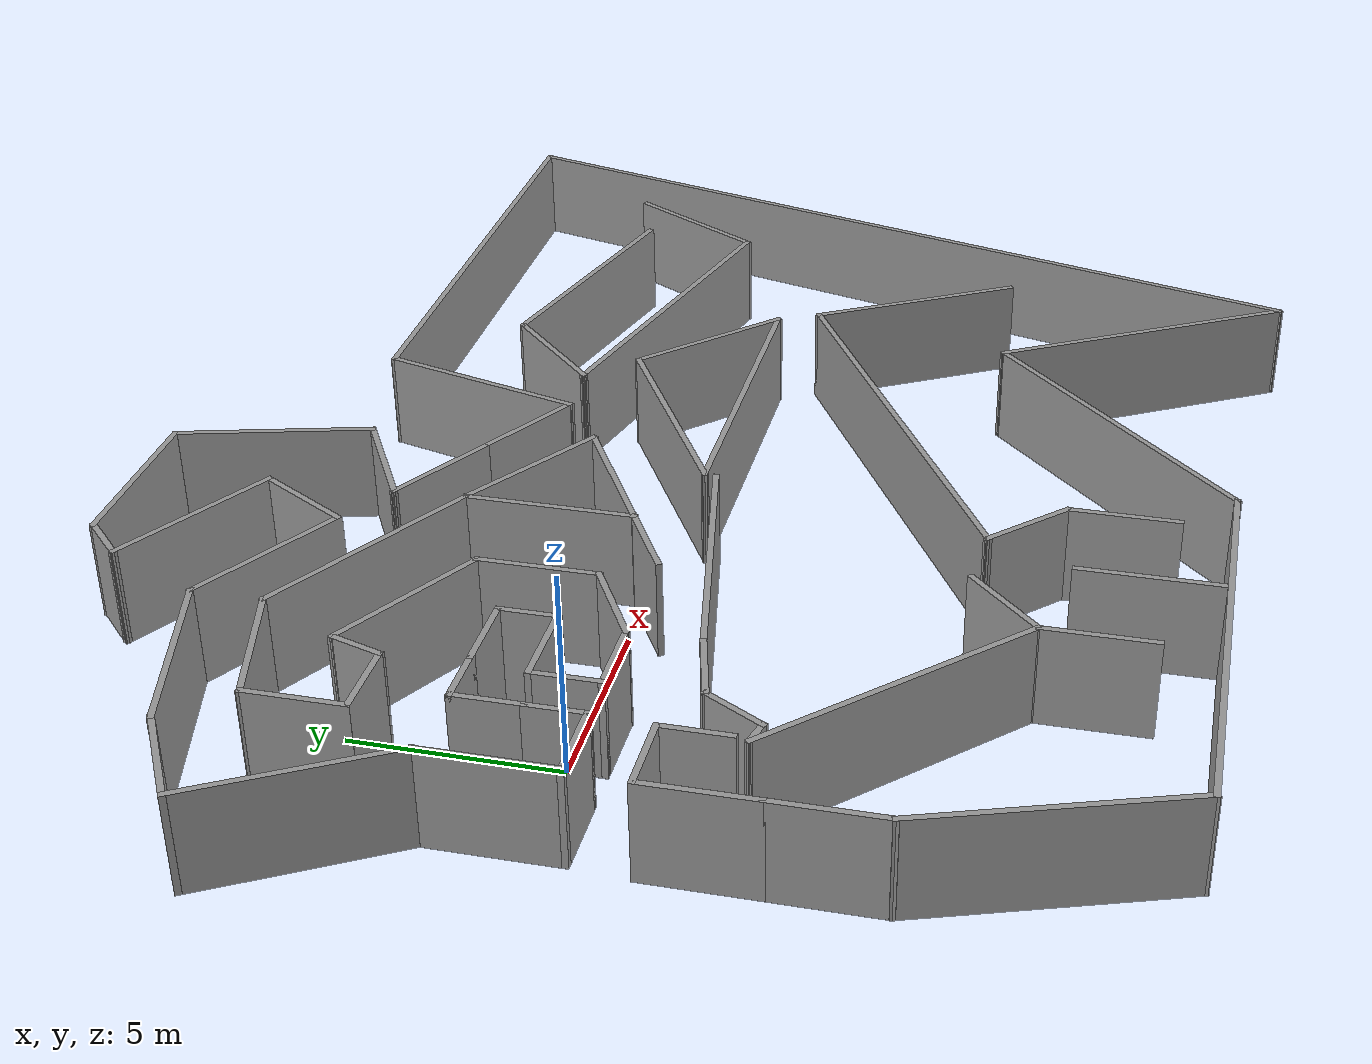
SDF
<?xml version='1.0'?>
<sdf version='1.7'>
  <model name='test_map'>
    <pose>10.5734 -0.967248 0 0 -0 0</pose>
    <link name='Wall_0'>
      <collision name='Wall_0_Collision'>
        <geometry>
          <box>
            <size>3.25 0.15 2.5</size>
          </box>
        </geometry>
        <pose>0 0 1.25 0 -0 0</pose>
      </collision>
      <visual name='Wall_0_Visual'>
        <pose>0 0 1.25 0 -0 0</pose>
        <geometry>
          <box>
            <size>3.25 0.15 2.5</size>
          </box>
        </geometry>
        <material>
          <script>
            <uri>file://media/materials/scripts/gazebo.material</uri>
            <name>Gazebo/Grey</name>
          </script>
          <ambient>1 1 1 1</ambient>
        </material>
        <meta>
          <layer>0</layer>
        </meta>
      </visual>
      <pose>-13.482 1.66184 0 0 -0 1.5708</pose>
    </link>
    <link name='Wall_12'>
      <collision name='Wall_12_Collision'>
        <geometry>
          <box>
            <size>2 0.15 2.5</size>
          </box>
        </geometry>
        <pose>0 0 1.25 0 -0 0</pose>
      </collision>
      <visual name='Wall_12_Visual'>
        <pose>0 0 1.25 0 -0 0</pose>
        <geometry>
          <box>
            <size>2 0.15 2.5</size>
          </box>
        </geometry>
        <material>
          <script>
            <uri>file://media/materials/scripts/gazebo.material</uri>
            <name>Gazebo/Grey</name>
          </script>
          <ambient>1 1 1 1</ambient>
        </material>
        <meta>
          <layer>0</layer>
        </meta>
      </visual>
      <pose>-12.557 0.111844 0 0 -0 0</pose>
    </link>
    <link name='Wall_13'>
      <collision name='Wall_13_Collision'>
        <geometry>
          <box>
            <size>1.5 0.15 2.5</size>
          </box>
        </geometry>
        <pose>0 0 1.25 0 -0 0</pose>
      </collision>
      <visual name='Wall_13_Visual'>
        <pose>0 0 1.25 0 -0 0</pose>
        <geometry>
          <box>
            <size>1.5 0.15 2.5</size>
          </box>
        </geometry>
        <material>
          <script>
            <uri>file://media/materials/scripts/gazebo.material</uri>
            <name>Gazebo/Grey</name>
          </script>
          <ambient>1 1 1 1</ambient>
        </material>
        <meta>
          <layer>0</layer>
        </meta>
      </visual>
      <pose>-11.632 0.786844 0 0 -0 1.5708</pose>
    </link>
    <link name='Wall_14'>
      <collision name='Wall_14_Collision'>
        <geometry>
          <box>
            <size>1.75 0.15 2.5</size>
          </box>
        </geometry>
        <pose>0 0 1.25 0 -0 0</pose>
      </collision>
      <visual name='Wall_14_Visual'>
        <pose>0 0 1.25 0 -0 0</pose>
        <geometry>
          <box>
            <size>1.75 0.15 2.5</size>
          </box>
        </geometry>
        <material>
          <script>
            <uri>file://media/materials/scripts/gazebo.material</uri>
            <name>Gazebo/Grey</name>
          </script>
          <ambient>1 1 1 1</ambient>
        </material>
        <meta>
          <layer>0</layer>
        </meta>
      </visual>
      <pose>-11.632 2.26184 0 0 -0 1.5708</pose>
    </link>
    <link name='Wall_15'>
      <collision name='Wall_15_Collision'>
        <geometry>
          <box>
            <size>1.5 0.15 2.5</size>
          </box>
        </geometry>
        <pose>0 0 1.25 0 -0 0</pose>
      </collision>
      <visual name='Wall_15_Visual'>
        <pose>0 0 1.25 0 -0 0</pose>
        <geometry>
          <box>
            <size>1.5 0.15 2.5</size>
          </box>
        </geometry>
        <material>
          <script>
            <uri>file://media/materials/scripts/gazebo.material</uri>
            <name>Gazebo/Grey</name>
          </script>
          <ambient>1 1 1 1</ambient>
        </material>
        <meta>
          <layer>0</layer>
        </meta>
      </visual>
      <pose>-10.957 3.06184 0 0 -0 0</pose>
    </link>
    <link name='Wall_16'>
      <collision name='Wall_16_Collision'>
        <geometry>
          <box>
            <size>2 0.15 2.5</size>
          </box>
        </geometry>
        <pose>0 0 1.25 0 -0 0</pose>
      </collision>
      <visual name='Wall_16_Visual'>
        <pose>0 0 1.25 0 -0 0</pose>
        <geometry>
          <box>
            <size>2 0.15 2.5</size>
          </box>
        </geometry>
        <material>
          <script>
            <uri>file://media/materials/scripts/gazebo.material</uri>
            <name>Gazebo/Grey</name>
          </script>
          <ambient>1 1 1 1</ambient>
        </material>
        <meta>
          <layer>0</layer>
        </meta>
      </visual>
      <pose>-9.35702 3.06184 0 0 -0 0</pose>
    </link>
    <link name='Wall_17'>
      <collision name='Wall_17_Collision'>
        <geometry>
          <box>
            <size>1.5 0.15 2.5</size>
          </box>
        </geometry>
        <pose>0 0 1.25 0 -0 0</pose>
      </collision>
      <visual name='Wall_17_Visual'>
        <pose>0 0 1.25 0 -0 0</pose>
        <geometry>
          <box>
            <size>1.5 0.15 2.5</size>
          </box>
        </geometry>
        <material>
          <script>
            <uri>file://media/materials/scripts/gazebo.material</uri>
            <name>Gazebo/Grey</name>
          </script>
          <ambient>1 1 1 1</ambient>
        </material>
        <meta>
          <layer>0</layer>
        </meta>
      </visual>
      <pose>-8.43202 2.38684 0 0 -0 -1.5708</pose>
    </link>
    <link name='Wall_18'>
      <collision name='Wall_18_Collision'>
        <geometry>
          <box>
            <size>2.25 0.15 2.5</size>
          </box>
        </geometry>
        <pose>0 0 1.25 0 -0 0</pose>
      </collision>
      <visual name='Wall_18_Visual'>
        <pose>0 0 1.25 0 -0 0</pose>
        <geometry>
          <box>
            <size>2.25 0.15 2.5</size>
          </box>
        </geometry>
        <material>
          <script>
            <uri>file://media/materials/scripts/gazebo.material</uri>
            <name>Gazebo/Grey</name>
          </script>
          <ambient>1 1 1 1</ambient>
        </material>
        <meta>
          <layer>0</layer>
        </meta>
      </visual>
      <pose>-9.48202 1.71184 0 0 -0 3.14159</pose>
    </link>
    <link name='Wall_19'>
      <collision name='Wall_19_Collision'>
        <geometry>
          <box>
            <size>1.75 0.15 2.5</size>
          </box>
        </geometry>
        <pose>0 0 1.25 0 -0 0</pose>
      </collision>
      <visual name='Wall_19_Visual'>
        <pose>0 0 1.25 0 -0 0</pose>
        <geometry>
          <box>
            <size>1.75 0.15 2.5</size>
          </box>
        </geometry>
        <material>
          <script>
            <uri>file://media/materials/scripts/gazebo.material</uri>
            <name>Gazebo/Grey</name>
          </script>
          <ambient>1 1 1 1</ambient>
        </material>
        <meta>
          <layer>0</layer>
        </meta>
      </visual>
      <pose>-10.532 0.911844 0 0 -0 -1.5708</pose>
    </link>
    <link name='Wall_20'>
      <collision name='Wall_20_Collision'>
        <geometry>
          <box>
            <size>2 0.15 2.5</size>
          </box>
        </geometry>
        <pose>0 0 1.25 0 -0 0</pose>
      </collision>
      <visual name='Wall_20_Visual'>
        <pose>0 0 1.25 0 -0 0</pose>
        <geometry>
          <box>
            <size>2 0.15 2.5</size>
          </box>
        </geometry>
        <material>
          <script>
            <uri>file://media/materials/scripts/gazebo.material</uri>
            <name>Gazebo/Grey</name>
          </script>
          <ambient>1 1 1 1</ambient>
        </material>
        <meta>
          <layer>0</layer>
        </meta>
      </visual>
      <pose>-9.60702 0.111844 0 0 -0 0</pose>
    </link>
    <link name='Wall_21'>
      <collision name='Wall_21_Collision'>
        <geometry>
          <box>
            <size>2.5 0.15 2.5</size>
          </box>
        </geometry>
        <pose>0 0 1.25 0 -0 0</pose>
      </collision>
      <visual name='Wall_21_Visual'>
        <pose>0 0 1.25 0 -0 0</pose>
        <geometry>
          <box>
            <size>2.5 0.15 2.5</size>
          </box>
        </geometry>
        <material>
          <script>
            <uri>file://media/materials/scripts/gazebo.material</uri>
            <name>Gazebo/Grey</name>
          </script>
          <ambient>1 1 1 1</ambient>
        </material>
        <meta>
          <layer>0</layer>
        </meta>
      </visual>
      <pose>-7.66444 0.699344 0 0 -0 0.523599</pose>
    </link>
    <link name='Wall_22'>
      <collision name='Wall_22_Collision'>
        <geometry>
          <box>
            <size>3 0.15 2.5</size>
          </box>
        </geometry>
        <pose>0 0 1.25 0 -0 0</pose>
      </collision>
      <visual name='Wall_22_Visual'>
        <pose>0 0 1.25 0 -0 0</pose>
        <geometry>
          <box>
            <size>3 0.15 2.5</size>
          </box>
        </geometry>
        <material>
          <script>
            <uri>file://media/materials/scripts/gazebo.material</uri>
            <name>Gazebo/Grey</name>
          </script>
          <ambient>1 1 1 1</ambient>
        </material>
        <meta>
          <layer>0</layer>
        </meta>
      </visual>
      <pose>-6.64686 2.71184 0 0 -0 1.5708</pose>
    </link>
    <link name='Wall_23'>
      <collision name='Wall_23_Collision'>
        <geometry>
          <box>
            <size>4.25 0.15 2.5</size>
          </box>
        </geometry>
        <pose>0 0 1.25 0 -0 0</pose>
      </collision>
      <visual name='Wall_23_Visual'>
        <pose>0 0 1.25 0 -0 0</pose>
        <geometry>
          <box>
            <size>4.25 0.15 2.5</size>
          </box>
        </geometry>
        <material>
          <script>
            <uri>file://media/materials/scripts/gazebo.material</uri>
            <name>Gazebo/Grey</name>
          </script>
          <ambient>1 1 1 1</ambient>
        </material>
        <meta>
          <layer>0</layer>
        </meta>
      </visual>
      <pose>-8.42221 5.16184 0 0 -0 2.61799</pose>
    </link>
    <link name='Wall_26'>
      <collision name='Wall_26_Collision'>
        <geometry>
          <box>
            <size>2.25 0.15 2.5</size>
          </box>
        </geometry>
        <pose>0 0 1.25 0 -0 0</pose>
      </collision>
      <visual name='Wall_26_Visual'>
        <pose>0 0 1.25 0 -0 0</pose>
        <geometry>
          <box>
            <size>2.25 0.15 2.5</size>
          </box>
        </geometry>
        <material>
          <script>
            <uri>file://media/materials/scripts/gazebo.material</uri>
            <name>Gazebo/Grey</name>
          </script>
          <ambient>1 1 1 1</ambient>
        </material>
        <meta>
          <layer>0</layer>
        </meta>
      </visual>
      <pose>-5.03228 0.643757 0 0 -0 0.523599</pose>
    </link>
    <link name='Wall_27'>
      <collision name='Wall_27_Collision'>
        <geometry>
          <box>
            <size>4.25 0.15 2.5</size>
          </box>
        </geometry>
        <pose>0 0 1.25 0 -0 0</pose>
      </collision>
      <visual name='Wall_27_Visual'>
        <pose>0 0 1.25 0 -0 0</pose>
        <geometry>
          <box>
            <size>4.25 0.15 2.5</size>
          </box>
        </geometry>
        <material>
          <script>
            <uri>file://media/materials/scripts/gazebo.material</uri>
            <name>Gazebo/Grey</name>
          </script>
          <ambient>1 1 1 1</ambient>
        </material>
        <meta>
          <layer>0</layer>
        </meta>
      </visual>
      <pose>-4.12295 3.21876 0 0 -0 1.5708</pose>
    </link>
    <link name='Wall_28'>
      <collision name='Wall_28_Collision'>
        <geometry>
          <box>
            <size>6 0.15 2.5</size>
          </box>
        </geometry>
        <pose>0 0 1.25 0 -0 0</pose>
      </collision>
      <visual name='Wall_28_Visual'>
        <pose>0 0 1.25 0 -0 0</pose>
        <geometry>
          <box>
            <size>6 0.15 2.5</size>
          </box>
        </geometry>
        <material>
          <script>
            <uri>file://media/materials/scripts/gazebo.material</uri>
            <name>Gazebo/Grey</name>
          </script>
          <ambient>1 1 1 1</ambient>
        </material>
        <meta>
          <layer>0</layer>
        </meta>
      </visual>
      <pose>-6.65608 6.73126 0 0 -0 2.61799</pose>
    </link>
    <link name='Wall_29'>
      <collision name='Wall_29_Collision'>
        <geometry>
          <box>
            <size>3.5 0.15 2.5</size>
          </box>
        </geometry>
        <pose>0 0 1.25 0 -0 0</pose>
      </collision>
      <visual name='Wall_29_Visual'>
        <pose>0 0 1.25 0 -0 0</pose>
        <geometry>
          <box>
            <size>3.5 0.15 2.5</size>
          </box>
        </geometry>
        <material>
          <script>
            <uri>file://media/materials/scripts/gazebo.material</uri>
            <name>Gazebo/Grey</name>
          </script>
          <ambient>1 1 1 1</ambient>
        </material>
        <meta>
          <layer>0</layer>
        </meta>
      </visual>
      <pose>-10.8071 7.76023 0 0 -0 -2.87979</pose>
    </link>
    <link name='Wall_30'>
      <collision name='Wall_30_Collision'>
        <geometry>
          <box>
            <size>2.5 0.15 2.5</size>
          </box>
        </geometry>
        <pose>0 0 1.25 0 -0 0</pose>
      </collision>
      <visual name='Wall_30_Visual'>
        <pose>0 0 1.25 0 -0 0</pose>
        <geometry>
          <box>
            <size>2.5 0.15 2.5</size>
          </box>
        </geometry>
        <material>
          <script>
            <uri>file://media/materials/scripts/gazebo.material</uri>
            <name>Gazebo/Grey</name>
          </script>
          <ambient>1 1 1 1</ambient>
        </material>
        <meta>
          <layer>0</layer>
        </meta>
      </visual>
      <pose>-12.4251 6.15171 0 0 -0 -1.5708</pose>
    </link>
    <link name='Wall_31'>
      <collision name='Wall_31_Collision'>
        <geometry>
          <box>
            <size>2 0.15 2.5</size>
          </box>
        </geometry>
        <pose>0 0 1.25 0 -0 0</pose>
      </collision>
      <visual name='Wall_31_Visual'>
        <pose>0 0 1.25 0 -0 0</pose>
        <geometry>
          <box>
            <size>2 0.15 2.5</size>
          </box>
        </geometry>
        <material>
          <script>
            <uri>file://media/materials/scripts/gazebo.material</uri>
            <name>Gazebo/Grey</name>
          </script>
          <ambient>1 1 1 1</ambient>
        </material>
        <meta>
          <layer>0</layer>
        </meta>
      </visual>
      <pose>-11.5001 4.97671 0 0 -0 0</pose>
    </link>
    <link name='Wall_32'>
      <collision name='Wall_32_Collision'>
        <geometry>
          <box>
            <size>1.41764 0.15 2.5</size>
          </box>
        </geometry>
        <pose>0 0 1.25 0 -0 0</pose>
      </collision>
      <visual name='Wall_32_Visual'>
        <pose>0 0 1.25 0 -0 0</pose>
        <geometry>
          <box>
            <size>1.41764 0.15 2.5</size>
          </box>
        </geometry>
        <material>
          <script>
            <uri>file://media/materials/scripts/gazebo.material</uri>
            <name>Gazebo/Grey</name>
          </script>
          <ambient>1 1 1 1</ambient>
        </material>
        <meta>
          <layer>0</layer>
        </meta>
      </visual>
      <pose>-10.3863 5.58178 0 0 -0 1.26842</pose>
    </link>
    <link name='Wall_34'>
      <collision name='Wall_34_Collision'>
        <geometry>
          <box>
            <size>5 0.15 2.5</size>
          </box>
        </geometry>
        <pose>0 0 1.25 0 -0 0</pose>
      </collision>
      <visual name='Wall_34_Visual'>
        <pose>0 0 1.25 0 -0 0</pose>
        <geometry>
          <box>
            <size>5 0.15 2.5</size>
          </box>
        </geometry>
        <material>
          <script>
            <uri>file://media/materials/scripts/gazebo.material</uri>
            <name>Gazebo/Grey</name>
          </script>
          <ambient>1 1 1 1</ambient>
        </material>
        <meta>
          <layer>0</layer>
        </meta>
      </visual>
      <pose>-14.6945 5.31196 0 0 -0 2.0944</pose>
    </link>
    <link name='Wall_35'>
      <collision name='Wall_35_Collision'>
        <geometry>
          <box>
            <size>2.75 0.15 2.5</size>
          </box>
        </geometry>
        <pose>0 0 1.25 0 -0 0</pose>
      </collision>
      <visual name='Wall_35_Visual'>
        <pose>0 0 1.25 0 -0 0</pose>
        <geometry>
          <box>
            <size>2.75 0.15 2.5</size>
          </box>
        </geometry>
        <material>
          <script>
            <uri>file://media/materials/scripts/gazebo.material</uri>
            <name>Gazebo/Grey</name>
          </script>
          <ambient>1 1 1 1</ambient>
        </material>
        <meta>
          <layer>0</layer>
        </meta>
      </visual>
      <pose>-14.7812 8.06207 0 0 -0 0.523599</pose>
    </link>
    <link name='Wall_36'>
      <collision name='Wall_36_Collision'>
        <geometry>
          <box>
            <size>4.75 0.15 2.5</size>
          </box>
        </geometry>
        <pose>0 0 1.25 0 -0 0</pose>
      </collision>
      <visual name='Wall_36_Visual'>
        <pose>0 0 1.25 0 -0 0</pose>
        <geometry>
          <box>
            <size>4.75 0.15 2.5</size>
          </box>
        </geometry>
        <material>
          <script>
            <uri>file://media/materials/scripts/gazebo.material</uri>
            <name>Gazebo/Grey</name>
          </script>
          <ambient>1 1 1 1</ambient>
        </material>
        <meta>
          <layer>0</layer>
        </meta>
      </visual>
      <pose>-11.4337 9.30735 0 0 -0 0.261799</pose>
    </link>
    <link name='Wall_37'>
      <collision name='Wall_37_Collision'>
        <geometry>
          <box>
            <size>4.25 0.15 2.5</size>
          </box>
        </geometry>
        <pose>0 0 1.25 0 -0 0</pose>
      </collision>
      <visual name='Wall_37_Visual'>
        <pose>0 0 1.25 0 -0 0</pose>
        <geometry>
          <box>
            <size>4.25 0.15 2.5</size>
          </box>
        </geometry>
        <material>
          <script>
            <uri>file://media/materials/scripts/gazebo.material</uri>
            <name>Gazebo/Grey</name>
          </script>
          <ambient>1 1 1 1</ambient>
        </material>
        <meta>
          <layer>0</layer>
        </meta>
      </visual>
      <pose>-7.43674 8.87763 0 0 -0 -0.523599</pose>
    </link>
    <link name='Wall_38'>
      <collision name='Wall_38_Collision'>
        <geometry>
          <box>
            <size>2.75 0.15 2.5</size>
          </box>
        </geometry>
        <pose>0 0 1.25 0 -0 0</pose>
      </collision>
      <visual name='Wall_38_Visual'>
        <pose>0 0 1.25 0 -0 0</pose>
        <geometry>
          <box>
            <size>2.75 0.15 2.5</size>
          </box>
        </geometry>
        <material>
          <script>
            <uri>file://media/materials/scripts/gazebo.material</uri>
            <name>Gazebo/Grey</name>
          </script>
          <ambient>1 1 1 1</ambient>
        </material>
        <meta>
          <layer>0</layer>
        </meta>
      </visual>
      <pose>-5.01139 8.97847 0 0 -0 1.0472</pose>
    </link>
    <link name='Wall_39'>
      <collision name='Wall_39_Collision'>
        <geometry>
          <box>
            <size>4.5 0.15 2.5</size>
          </box>
        </geometry>
        <pose>0 0 1.25 0 -0 0</pose>
      </collision>
      <visual name='Wall_39_Visual'>
        <pose>0 0 1.25 0 -0 0</pose>
        <geometry>
          <box>
            <size>4.5 0.15 2.5</size>
          </box>
        </geometry>
        <material>
          <script>
            <uri>file://media/materials/scripts/gazebo.material</uri>
            <name>Gazebo/Grey</name>
          </script>
          <ambient>1 1 1 1</ambient>
        </material>
        <meta>
          <layer>0</layer>
        </meta>
      </visual>
      <pose>-6.24499 11.1918 0 0 -0 2.61799</pose>
    </link>
    <link name='Wall_4'>
      <collision name='Wall_4_Collision'>
        <geometry>
          <box>
            <size>2.75 0.15 2.5</size>
          </box>
        </geometry>
        <pose>0 0 1.25 0 -0 0</pose>
      </collision>
      <visual name='Wall_4_Visual'>
        <pose>0 0 1.25 0 -0 0</pose>
        <geometry>
          <box>
            <size>2.75 0.15 2.5</size>
          </box>
        </geometry>
        <material>
          <script>
            <uri>file://media/materials/scripts/gazebo.material</uri>
            <name>Gazebo/Grey</name>
          </script>
          <ambient>1 1 1 1</ambient>
        </material>
        <meta>
          <layer>0</layer>
        </meta>
      </visual>
      <pose>-13.5759 -2.65107 0 0 -0 1.5708</pose>
    </link>
    <link name='Wall_40'>
      <collision name='Wall_40_Collision'>
        <geometry>
          <box>
            <size>1.5 0.15 2.5</size>
          </box>
        </geometry>
        <pose>0 0 1.25 0 -0 0</pose>
      </collision>
      <visual name='Wall_40_Visual'>
        <pose>0 0 1.25 0 -0 0</pose>
        <geometry>
          <box>
            <size>1.5 0.15 2.5</size>
          </box>
        </geometry>
        <material>
          <script>
            <uri>file://media/materials/scripts/gazebo.material</uri>
            <name>Gazebo/Grey</name>
          </script>
          <ambient>1 1 1 1</ambient>
        </material>
        <meta>
          <layer>0</layer>
        </meta>
      </visual>
      <pose>-7.6513 12.7566 0 0 -0 0.785398</pose>
    </link>
    <link name='Wall_41'>
      <collision name='Wall_41_Collision'>
        <geometry>
          <box>
            <size>4.5 0.15 2.5</size>
          </box>
        </geometry>
        <pose>0 0 1.25 0 -0 0</pose>
      </collision>
      <visual name='Wall_41_Visual'>
        <pose>0 0 1.25 0 -0 0</pose>
        <geometry>
          <box>
            <size>4.5 0.15 2.5</size>
          </box>
        </geometry>
        <material>
          <script>
            <uri>file://media/materials/scripts/gazebo.material</uri>
            <name>Gazebo/Grey</name>
          </script>
          <ambient>1 1 1 1</ambient>
        </material>
        <meta>
          <layer>0</layer>
        </meta>
      </visual>
      <pose>-4.99901 13.2339 0 0 -0 0</pose>
    </link>
    <link name='Wall_42'>
      <collision name='Wall_42_Collision'>
        <geometry>
          <box>
            <size>5 0.15 2.5</size>
          </box>
        </geometry>
        <pose>0 0 1.25 0 -0 0</pose>
      </collision>
      <visual name='Wall_42_Visual'>
        <pose>0 0 1.25 0 -0 0</pose>
        <geometry>
          <box>
            <size>5 0.15 2.5</size>
          </box>
        </geometry>
        <material>
          <script>
            <uri>file://media/materials/scripts/gazebo.material</uri>
            <name>Gazebo/Grey</name>
          </script>
          <ambient>1 1 1 1</ambient>
        </material>
        <meta>
          <layer>0</layer>
        </meta>
      </visual>
      <pose>-2.19637 10.8915 0 0 -0 -1.309</pose>
    </link>
    <link name='Wall_43'>
      <collision name='Wall_43_Collision'>
        <geometry>
          <box>
            <size>3.25 0.15 2.5</size>
          </box>
        </geometry>
        <pose>0 0 1.25 0 -0 0</pose>
      </collision>
      <visual name='Wall_43_Visual'>
        <pose>0 0 1.25 0 -0 0</pose>
        <geometry>
          <box>
            <size>3.25 0.15 2.5</size>
          </box>
        </geometry>
        <material>
          <script>
            <uri>file://media/materials/scripts/gazebo.material</uri>
            <name>Gazebo/Grey</name>
          </script>
          <ambient>1 1 1 1</ambient>
        </material>
        <meta>
          <layer>0</layer>
        </meta>
      </visual>
      <pose>-2.91107 7.77416 0 0 -0 -2.61799</pose>
    </link>
    <link name='Wall_44'>
      <collision name='Wall_44_Collision'>
        <geometry>
          <box>
            <size>3 0.15 2.5</size>
          </box>
        </geometry>
        <pose>0 0 1.25 0 -0 0</pose>
      </collision>
      <visual name='Wall_44_Visual'>
        <pose>0 0 1.25 0 -0 0</pose>
        <geometry>
          <box>
            <size>3 0.15 2.5</size>
          </box>
        </geometry>
        <material>
          <script>
            <uri>file://media/materials/scripts/gazebo.material</uri>
            <name>Gazebo/Grey</name>
          </script>
          <ambient>1 1 1 1</ambient>
        </material>
        <meta>
          <layer>0</layer>
        </meta>
      </visual>
      <pose>-3.01933 6.28665 0 0 -0 -0.523599</pose>
    </link>
    <link name='Wall_45'>
      <collision name='Wall_45_Collision'>
        <geometry>
          <box>
            <size>3 0.15 2.5</size>
          </box>
        </geometry>
        <pose>0 0 1.25 0 -0 0</pose>
      </collision>
      <visual name='Wall_45_Visual'>
        <pose>0 0 1.25 0 -0 0</pose>
        <geometry>
          <box>
            <size>3 0.15 2.5</size>
          </box>
        </geometry>
        <material>
          <script>
            <uri>file://media/materials/scripts/gazebo.material</uri>
            <name>Gazebo/Grey</name>
          </script>
          <ambient>1 1 1 1</ambient>
        </material>
        <meta>
          <layer>0</layer>
        </meta>
      </visual>
      <pose>-0.551153 4.86165 0 0 -0 -0.523599</pose>
    </link>
    <link name='Wall_47'>
      <collision name='Wall_47_Collision'>
        <geometry>
          <box>
            <size>4 0.15 2.5</size>
          </box>
        </geometry>
        <pose>0 0 1.25 0 -0 0</pose>
      </collision>
      <visual name='Wall_47_Visual'>
        <pose>0 0 1.25 0 -0 0</pose>
        <geometry>
          <box>
            <size>4 0.15 2.5</size>
          </box>
        </geometry>
        <material>
          <script>
            <uri>file://media/materials/scripts/gazebo.material</uri>
            <name>Gazebo/Grey</name>
          </script>
          <ambient>1 1 1 1</ambient>
        </material>
        <meta>
          <layer>0</layer>
        </meta>
      </visual>
      <pose>-2.45585 2.13126 0 0 -0 0.523599</pose>
    </link>
    <link name='Wall_48'>
      <collision name='Wall_48_Collision'>
        <geometry>
          <box>
            <size>4.13089 0.15 2.5</size>
          </box>
        </geometry>
        <pose>0 0 1.25 0 -0 0</pose>
      </collision>
      <visual name='Wall_48_Visual'>
        <pose>0 0 1.25 0 -0 0</pose>
        <geometry>
          <box>
            <size>4.13089 0.15 2.5</size>
          </box>
        </geometry>
        <material>
          <script>
            <uri>file://media/materials/scripts/gazebo.material</uri>
            <name>Gazebo/Grey</name>
          </script>
          <ambient>1 1 1 1</ambient>
        </material>
        <meta>
          <layer>0</layer>
        </meta>
      </visual>
      <pose>-2.45585 4.18126 0 0 -0 2.56358</pose>
    </link>
    <link name='Wall_5'>
      <collision name='Wall_5_Collision'>
        <geometry>
          <box>
            <size>2 0.15 2.5</size>
          </box>
        </geometry>
        <pose>0 0 1.25 0 -0 0</pose>
      </collision>
      <visual name='Wall_5_Visual'>
        <pose>0 0 1.25 0 -0 0</pose>
        <geometry>
          <box>
            <size>2 0.15 2.5</size>
          </box>
        </geometry>
        <material>
          <script>
            <uri>file://media/materials/scripts/gazebo.material</uri>
            <name>Gazebo/Grey</name>
          </script>
          <ambient>1 1 1 1</ambient>
        </material>
        <meta>
          <layer>0</layer>
        </meta>
      </visual>
      <pose>-12.6509 -1.35107 0 0 -0 0</pose>
    </link>
    <link name='Wall_50'>
      <collision name='Wall_50_Collision'>
        <geometry>
          <box>
            <size>5.5 0.15 2.5</size>
          </box>
        </geometry>
        <pose>0 0 1.25 0 -0 0</pose>
      </collision>
      <visual name='Wall_50_Visual'>
        <pose>0 0 1.25 0 -0 0</pose>
        <geometry>
          <box>
            <size>5.5 0.15 2.5</size>
          </box>
        </geometry>
        <material>
          <script>
            <uri>file://media/materials/scripts/gazebo.material</uri>
            <name>Gazebo/Grey</name>
          </script>
          <ambient>1 1 1 1</ambient>
        </material>
        <meta>
          <layer>0</layer>
        </meta>
      </visual>
      <pose>1.37527 6.73301 0 0 -0 1.309</pose>
    </link>
    <link name='Wall_51'>
      <collision name='Wall_51_Collision'>
        <geometry>
          <box>
            <size>14 0.15 2.5</size>
          </box>
        </geometry>
        <pose>0 0 1.25 0 -0 0</pose>
      </collision>
      <visual name='Wall_51_Visual'>
        <pose>0 0 1.25 0 -0 0</pose>
        <geometry>
          <box>
            <size>14 0.15 2.5</size>
          </box>
        </geometry>
        <material>
          <script>
            <uri>file://media/materials/scripts/gazebo.material</uri>
            <name>Gazebo/Grey</name>
          </script>
          <ambient>1 1 1 1</ambient>
        </material>
        <meta>
          <layer>0</layer>
        </meta>
      </visual>
      <pose>8.99262 9.31686 0 0 -0 0</pose>
    </link>
    <link name='Wall_52'>
      <collision name='Wall_52_Collision'>
        <geometry>
          <box>
            <size>23.5 0.15 2.5</size>
          </box>
        </geometry>
        <pose>0 0 1.25 0 -0 0</pose>
      </collision>
      <visual name='Wall_52_Visual'>
        <pose>0 0 1.25 0 -0 0</pose>
        <geometry>
          <box>
            <size>23.5 0.15 2.5</size>
          </box>
        </geometry>
        <material>
          <script>
            <uri>file://media/materials/scripts/gazebo.material</uri>
            <name>Gazebo/Grey</name>
          </script>
          <ambient>1 1 1 1</ambient>
        </material>
        <meta>
          <layer>0</layer>
        </meta>
      </visual>
      <pose>12.8959 -1.96033 0 0 -0 -1.8326</pose>
    </link>
    <link name='Wall_53'>
      <collision name='Wall_53_Collision'>
        <geometry>
          <box>
            <size>8.25 0.15 2.5</size>
          </box>
        </geometry>
        <pose>0 0 1.25 0 -0 0</pose>
      </collision>
      <visual name='Wall_53_Visual'>
        <pose>0 0 1.25 0 -0 0</pose>
        <geometry>
          <box>
            <size>8.25 0.15 2.5</size>
          </box>
        </geometry>
        <material>
          <script>
            <uri>file://media/materials/scripts/gazebo.material</uri>
            <name>Gazebo/Grey</name>
          </script>
          <ambient>1 1 1 1</ambient>
        </material>
        <meta>
          <layer>0</layer>
        </meta>
      </visual>
      <pose>7.84919 -9.73011 0 0 -0 2.0944</pose>
    </link>
    <link name='Wall_54'>
      <collision name='Wall_54_Collision'>
        <geometry>
          <box>
            <size>9 0.15 2.5</size>
          </box>
        </geometry>
        <pose>0 0 1.25 0 -0 0</pose>
      </collision>
      <visual name='Wall_54_Visual'>
        <pose>0 0 1.25 0 -0 0</pose>
        <geometry>
          <box>
            <size>9 0.15 2.5</size>
          </box>
        </geometry>
        <material>
          <script>
            <uri>file://media/materials/scripts/gazebo.material</uri>
            <name>Gazebo/Grey</name>
          </script>
          <ambient>1 1 1 1</ambient>
        </material>
        <meta>
          <layer>0</layer>
        </meta>
      </visual>
      <pose>2.69524 -9.35165 0 0 -0 -2.35619</pose>
    </link>
    <link name='Wall_55'>
      <collision name='Wall_55_Collision'>
        <geometry>
          <box>
            <size>11.25 0.15 2.5</size>
          </box>
        </geometry>
        <pose>0 0 1.25 0 -0 0</pose>
      </collision>
      <visual name='Wall_55_Visual'>
        <pose>0 0 1.25 0 -0 0</pose>
        <geometry>
          <box>
            <size>11.25 0.15 2.5</size>
          </box>
        </geometry>
        <material>
          <script>
            <uri>file://media/materials/scripts/gazebo.material</uri>
            <name>Gazebo/Grey</name>
          </script>
          <ambient>1 1 1 1</ambient>
        </material>
        <meta>
          <layer>0</layer>
        </meta>
      </visual>
      <pose>-5.9837 -12.4806 0 0 -0 3.14159</pose>
    </link>
    <link name='Wall_56'>
      <collision name='Wall_56_Collision'>
        <geometry>
          <box>
            <size>6.42134 0.15 2.5</size>
          </box>
        </geometry>
        <pose>0 0 1.25 0 -0 0</pose>
      </collision>
      <visual name='Wall_56_Visual'>
        <pose>0 0 1.25 0 -0 0</pose>
        <geometry>
          <box>
            <size>6.42134 0.15 2.5</size>
          </box>
        </geometry>
        <material>
          <script>
            <uri>file://media/materials/scripts/gazebo.material</uri>
            <name>Gazebo/Grey</name>
          </script>
          <ambient>1 1 1 1</ambient>
        </material>
        <meta>
          <layer>0</layer>
        </meta>
      </visual>
      <pose>-12.5548 -9.51584 0 0 -0 1.90248</pose>
    </link>
    <link name='Wall_6'>
      <collision name='Wall_6_Collision'>
        <geometry>
          <box>
            <size>1.75 0.15 2.5</size>
          </box>
        </geometry>
        <pose>0 0 1.25 0 -0 0</pose>
      </collision>
      <visual name='Wall_6_Visual'>
        <pose>0 0 1.25 0 -0 0</pose>
        <geometry>
          <box>
            <size>1.75 0.15 2.5</size>
          </box>
        </geometry>
        <material>
          <script>
            <uri>file://media/materials/scripts/gazebo.material</uri>
            <name>Gazebo/Grey</name>
          </script>
          <ambient>1 1 1 1</ambient>
        </material>
        <meta>
          <layer>0</layer>
        </meta>
      </visual>
      <pose>-11.7259 -2.15107 0 0 -0 -1.5708</pose>
    </link>
    <link name='Wall_60'>
      <collision name='Wall_60_Collision'>
        <geometry>
          <box>
            <size>6.25 0.15 2.5</size>
          </box>
        </geometry>
        <pose>0 0 1.25 0 -0 0</pose>
      </collision>
      <visual name='Wall_60_Visual'>
        <pose>0 0 1.25 0 -0 0</pose>
        <geometry>
          <box>
            <size>6.25 0.15 2.5</size>
          </box>
        </geometry>
        <material>
          <script>
            <uri>file://media/materials/scripts/gazebo.material</uri>
            <name>Gazebo/Grey</name>
          </script>
          <ambient>1 1 1 1</ambient>
        </material>
        <meta>
          <layer>0</layer>
        </meta>
      </visual>
      <pose>0.734879 1.54144 0 0 -0 0.523599</pose>
    </link>
    <link name='Wall_61'>
      <collision name='Wall_61_Collision'>
        <geometry>
          <box>
            <size>4.5 0.15 2.5</size>
          </box>
        </geometry>
        <pose>0 0 1.25 0 -0 0</pose>
      </collision>
      <visual name='Wall_61_Visual'>
        <pose>0 0 1.25 0 -0 0</pose>
        <geometry>
          <box>
            <size>4.5 0.15 2.5</size>
          </box>
        </geometry>
        <material>
          <script>
            <uri>file://media/materials/scripts/gazebo.material</uri>
            <name>Gazebo/Grey</name>
          </script>
          <ambient>1 1 1 1</ambient>
        </material>
        <meta>
          <layer>0</layer>
        </meta>
      </visual>
      <pose>4.91421 1.52848 0 0 -0 -0.785398</pose>
    </link>
    <link name='Wall_62'>
      <collision name='Wall_62_Collision'>
        <geometry>
          <box>
            <size>8.50871 0.15 2.5</size>
          </box>
        </geometry>
        <pose>0 0 1.25 0 -0 0</pose>
      </collision>
      <visual name='Wall_62_Visual'>
        <pose>0 0 1.25 0 -0 0</pose>
        <geometry>
          <box>
            <size>8.50871 0.15 2.5</size>
          </box>
        </geometry>
        <material>
          <script>
            <uri>file://media/materials/scripts/gazebo.material</uri>
            <name>Gazebo/Grey</name>
          </script>
          <ambient>1 1 1 1</ambient>
        </material>
        <meta>
          <layer>0</layer>
        </meta>
      </visual>
      <pose>2.27284 0.00348 0 0 -0 3.13849</pose>
    </link>
    <link name='Wall_64'>
      <collision name='Wall_64_Collision'>
        <geometry>
          <box>
            <size>3.5 0.15 2.5</size>
          </box>
        </geometry>
        <pose>0 0 1.25 0 -0 0</pose>
      </collision>
      <visual name='Wall_64_Visual'>
        <pose>0 0 1.25 0 -0 0</pose>
        <geometry>
          <box>
            <size>3.5 0.15 2.5</size>
          </box>
        </geometry>
        <material>
          <script>
            <uri>file://media/materials/scripts/gazebo.material</uri>
            <name>Gazebo/Grey</name>
          </script>
          <ambient>1 1 1 1</ambient>
        </material>
        <meta>
          <layer>0</layer>
        </meta>
      </visual>
      <pose>3.4511 5.42754 0 0 -0 0.785398</pose>
    </link>
    <link name='Wall_65'>
      <collision name='Wall_65_Collision'>
        <geometry>
          <box>
            <size>7 0.15 2.5</size>
          </box>
        </geometry>
        <pose>0 0 1.25 0 -0 0</pose>
      </collision>
      <visual name='Wall_65_Visual'>
        <pose>0 0 1.25 0 -0 0</pose>
        <geometry>
          <box>
            <size>7 0.15 2.5</size>
          </box>
        </geometry>
        <material>
          <script>
            <uri>file://media/materials/scripts/gazebo.material</uri>
            <name>Gazebo/Grey</name>
          </script>
          <ambient>1 1 1 1</ambient>
        </material>
        <meta>
          <layer>0</layer>
        </meta>
      </visual>
      <pose>7.9438 5.72549 0 0 -0 -0.261799</pose>
    </link>
    <link name='Wall_69'>
      <collision name='Wall_69_Collision'>
        <geometry>
          <box>
            <size>1.75 0.15 2.5</size>
          </box>
        </geometry>
        <pose>0 0 1.25 0 -0 0</pose>
      </collision>
      <visual name='Wall_69_Visual'>
        <pose>0 0 1.25 0 -0 0</pose>
        <geometry>
          <box>
            <size>1.75 0.15 2.5</size>
          </box>
        </geometry>
        <material>
          <script>
            <uri>file://media/materials/scripts/gazebo.material</uri>
            <name>Gazebo/Grey</name>
          </script>
          <ambient>1 1 1 1</ambient>
        </material>
        <meta>
          <layer>0</layer>
        </meta>
      </visual>
      <pose>-10.8488 -2.76002 0 0 -0 -2.0944</pose>
    </link>
    <link name='Wall_71'>
      <collision name='Wall_71_Collision'>
        <geometry>
          <box>
            <size>2 0.15 2.5</size>
          </box>
        </geometry>
        <pose>0 0 1.25 0 -0 0</pose>
      </collision>
      <visual name='Wall_71_Visual'>
        <pose>0 0 1.25 0 -0 0</pose>
        <geometry>
          <box>
            <size>2 0.15 2.5</size>
          </box>
        </geometry>
        <material>
          <script>
            <uri>file://media/materials/scripts/gazebo.material</uri>
            <name>Gazebo/Grey</name>
          </script>
          <ambient>1 1 1 1</ambient>
        </material>
        <meta>
          <layer>0</layer>
        </meta>
      </visual>
      <pose>-9.55534 -1.82779 0 0 -0 0.261799</pose>
    </link>
    <link name='Wall_74'>
      <collision name='Wall_74_Collision'>
        <geometry>
          <box>
            <size>0.75 0.15 2.5</size>
          </box>
        </geometry>
        <pose>0 0 1.25 0 -0 0</pose>
      </collision>
      <visual name='Wall_74_Visual'>
        <pose>0 0 1.25 0 -0 0</pose>
        <geometry>
          <box>
            <size>0.75 0.15 2.5</size>
          </box>
        </geometry>
        <material>
          <script>
            <uri>file://media/materials/scripts/gazebo.material</uri>
            <name>Gazebo/Grey</name>
          </script>
          <ambient>1 1 1 1</ambient>
        </material>
        <meta>
          <layer>0</layer>
        </meta>
      </visual>
      <pose>-11.5386 -3.37519 0 0 -0 2.87979</pose>
    </link>
    <link name='Wall_76'>
      <collision name='Wall_76_Collision'>
        <geometry>
          <box>
            <size>7.5 0.15 2.5</size>
          </box>
        </geometry>
        <pose>0 0 1.25 0 -0 0</pose>
      </collision>
      <visual name='Wall_76_Visual'>
        <pose>0 0 1.25 0 -0 0</pose>
        <geometry>
          <box>
            <size>7.5 0.15 2.5</size>
          </box>
        </geometry>
        <material>
          <script>
            <uri>file://media/materials/scripts/gazebo.material</uri>
            <name>Gazebo/Grey</name>
          </script>
          <ambient>1 1 1 1</ambient>
        </material>
        <meta>
          <layer>0</layer>
        </meta>
      </visual>
      <pose>-9.22976 -5.89616 0 0 -0 -0.785398</pose>
    </link>
    <link name='Wall_77'>
      <collision name='Wall_77_Collision'>
        <geometry>
          <box>
            <size>2.75 0.15 2.5</size>
          </box>
        </geometry>
        <pose>0 0 1.25 0 -0 0</pose>
      </collision>
      <visual name='Wall_77_Visual'>
        <pose>0 0 1.25 0 -0 0</pose>
        <geometry>
          <box>
            <size>2.75 0.15 2.5</size>
          </box>
        </geometry>
        <material>
          <script>
            <uri>file://media/materials/scripts/gazebo.material</uri>
            <name>Gazebo/Grey</name>
          </script>
          <ambient>1 1 1 1</ambient>
        </material>
        <meta>
          <layer>0</layer>
        </meta>
      </visual>
      <pose>-6.63115 -9.79478 0 0 -0 -1.5708</pose>
    </link>
    <link name='Wall_8'>
      <collision name='Wall_8_Collision'>
        <geometry>
          <box>
            <size>2.75 0.15 2.5</size>
          </box>
        </geometry>
        <pose>0 0 1.25 0 -0 0</pose>
      </collision>
      <visual name='Wall_8_Visual'>
        <pose>0 0 1.25 0 -0 0</pose>
        <geometry>
          <box>
            <size>2.75 0.15 2.5</size>
          </box>
        </geometry>
        <material>
          <script>
            <uri>file://media/materials/scripts/gazebo.material</uri>
            <name>Gazebo/Grey</name>
          </script>
          <ambient>1 1 1 1</ambient>
        </material>
        <meta>
          <layer>0</layer>
        </meta>
      </visual>
      <pose>-13.5759 -5.25107 0 0 -0 -1.5708</pose>
    </link>
    <link name='Wall_81'>
      <collision name='Wall_81_Collision'>
        <geometry>
          <box>
            <size>3.5 0.15 2.5</size>
          </box>
        </geometry>
        <pose>0 0 1.25 0 -0 0</pose>
      </collision>
      <visual name='Wall_81_Visual'>
        <pose>0 0 1.25 0 -0 0</pose>
        <geometry>
          <box>
            <size>3.5 0.15 2.5</size>
          </box>
        </geometry>
        <material>
          <script>
            <uri>file://media/materials/scripts/gazebo.material</uri>
            <name>Gazebo/Grey</name>
          </script>
          <ambient>1 1 1 1</ambient>
        </material>
        <meta>
          <layer>0</layer>
        </meta>
      </visual>
      <pose>-4.12627 -10.7206 0 0 -0 1.5708</pose>
    </link>
    <link name='Wall_83'>
      <collision name='Wall_83_Collision'>
        <geometry>
          <box>
            <size>2.75 0.15 2.5</size>
          </box>
        </geometry>
        <pose>0 0 1.25 0 -0 0</pose>
      </collision>
      <visual name='Wall_83_Visual'>
        <pose>0 0 1.25 0 -0 0</pose>
        <geometry>
          <box>
            <size>2.75 0.15 2.5</size>
          </box>
        </geometry>
        <material>
          <script>
            <uri>file://media/materials/scripts/gazebo.material</uri>
            <name>Gazebo/Grey</name>
          </script>
          <ambient>1 1 1 1</ambient>
        </material>
        <meta>
          <layer>0</layer>
        </meta>
      </visual>
      <pose>-1.65848 -9.93327 0 0 -0 -1.5708</pose>
    </link>
    <link name='Wall_85'>
      <collision name='Wall_85_Collision'>
        <geometry>
          <box>
            <size>2.5 0.15 2.5</size>
          </box>
        </geometry>
        <pose>0 0 1.25 0 -0 0</pose>
      </collision>
      <visual name='Wall_85_Visual'>
        <pose>0 0 1.25 0 -0 0</pose>
        <geometry>
          <box>
            <size>2.5 0.15 2.5</size>
          </box>
        </geometry>
        <material>
          <script>
            <uri>file://media/materials/scripts/gazebo.material</uri>
            <name>Gazebo/Grey</name>
          </script>
          <ambient>1 1 1 1</ambient>
        </material>
        <meta>
          <layer>0</layer>
        </meta>
      </visual>
      <pose>-5.80029 -7.66393 0 0 -0 0.785398</pose>
    </link>
    <link name='Wall_87'>
      <collision name='Wall_87_Collision'>
        <geometry>
          <box>
            <size>2.5 0.15 2.5</size>
          </box>
        </geometry>
        <pose>0 0 1.25 0 -0 0</pose>
      </collision>
      <visual name='Wall_87_Visual'>
        <pose>0 0 1.25 0 -0 0</pose>
        <geometry>
          <box>
            <size>2.5 0.15 2.5</size>
          </box>
        </geometry>
        <material>
          <script>
            <uri>file://media/materials/scripts/gazebo.material</uri>
            <name>Gazebo/Grey</name>
          </script>
          <ambient>1 1 1 1</ambient>
        </material>
        <meta>
          <layer>0</layer>
        </meta>
      </visual>
      <pose>-2.48934 -7.80242 0 0 -0 2.35619</pose>
    </link>
    <link name='Wall_89'>
      <collision name='Wall_89_Collision'>
        <geometry>
          <box>
            <size>9.25 0.15 2.5</size>
          </box>
        </geometry>
        <pose>0 0 1.25 0 -0 0</pose>
      </collision>
      <visual name='Wall_89_Visual'>
        <pose>0 0 1.25 0 -0 0</pose>
        <geometry>
          <box>
            <size>9.25 0.15 2.5</size>
          </box>
        </geometry>
        <material>
          <script>
            <uri>file://media/materials/scripts/gazebo.material</uri>
            <name>Gazebo/Grey</name>
          </script>
          <ambient>1 1 1 1</ambient>
        </material>
        <meta>
          <layer>0</layer>
        </meta>
      </visual>
      <pose>6.66166 3.06551 0 0 -0 -0.261799</pose>
    </link>
    <link name='Wall_90'>
      <collision name='Wall_90_Collision'>
        <geometry>
          <box>
            <size>4.25 0.15 2.5</size>
          </box>
        </geometry>
        <pose>0 0 1.25 0 -0 0</pose>
      </collision>
      <visual name='Wall_90_Visual'>
        <pose>0 0 1.25 0 -0 0</pose>
        <geometry>
          <box>
            <size>4.25 0.15 2.5</size>
          </box>
        </geometry>
        <material>
          <script>
            <uri>file://media/materials/scripts/gazebo.material</uri>
            <name>Gazebo/Grey</name>
          </script>
          <ambient>1 1 1 1</ambient>
        </material>
        <meta>
          <layer>0</layer>
        </meta>
      </visual>
      <pose>12.0816 3.66323 0 0 -0 1.0472</pose>
    </link>
    <link name='Wall_94'>
      <collision name='Wall_94_Collision'>
        <geometry>
          <box>
            <size>6.9924 0.15 2.5</size>
          </box>
        </geometry>
        <pose>0 0 1.25 0 -0 0</pose>
      </collision>
      <visual name='Wall_94_Visual'>
        <pose>0 0 1.25 0 -0 0</pose>
        <geometry>
          <box>
            <size>6.9924 0.15 2.5</size>
          </box>
        </geometry>
        <material>
          <script>
            <uri>file://media/materials/scripts/gazebo.material</uri>
            <name>Gazebo/Grey</name>
          </script>
          <ambient>1 1 1 1</ambient>
        </material>
        <meta>
          <layer>0</layer>
        </meta>
      </visual>
      <pose>-5.30465 -0.929771 0 0 -0 -2.94787</pose>
    </link>
    <link name='Wall_96'>
      <collision name='Wall_96_Collision'>
        <geometry>
          <box>
            <size>12 0.15 2.5</size>
          </box>
        </geometry>
        <pose>0 0 1.25 0 -0 0</pose>
      </collision>
      <visual name='Wall_96_Visual'>
        <pose>0 0 1.25 0 -0 0</pose>
        <geometry>
          <box>
            <size>12 0.15 2.5</size>
          </box>
        </geometry>
        <material>
          <script>
            <uri>file://media/materials/scripts/gazebo.material</uri>
            <name>Gazebo/Grey</name>
          </script>
          <ambient>1 1 1 1</ambient>
        </material>
        <meta>
          <layer>0</layer>
        </meta>
      </visual>
      <pose>1.81101 -4.00907 0 0 -0 0.523599</pose>
    </link>
    <link name='Wall_97'>
      <collision name='Wall_97_Collision'>
        <geometry>
          <box>
            <size>5.75 0.15 2.5</size>
          </box>
        </geometry>
        <pose>0 0 1.25 0 -0 0</pose>
      </collision>
      <visual name='Wall_97_Visual'>
        <pose>0 0 1.25 0 -0 0</pose>
        <geometry>
          <box>
            <size>5.75 0.15 2.5</size>
          </box>
        </geometry>
        <material>
          <script>
            <uri>file://media/materials/scripts/gazebo.material</uri>
            <name>Gazebo/Grey</name>
          </script>
          <ambient>1 1 1 1</ambient>
        </material>
        <meta>
          <layer>0</layer>
        </meta>
      </visual>
      <pose>8.34221 -3.47144 0 0 -0 -1.0472</pose>
    </link>
    <static>1</static>
  </model>
</sdf>
